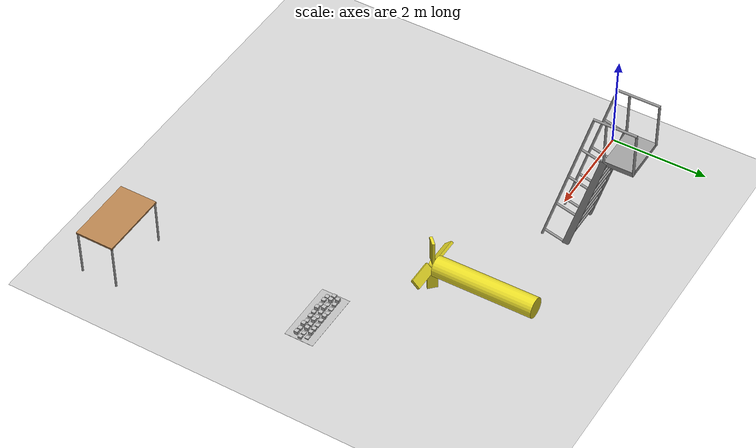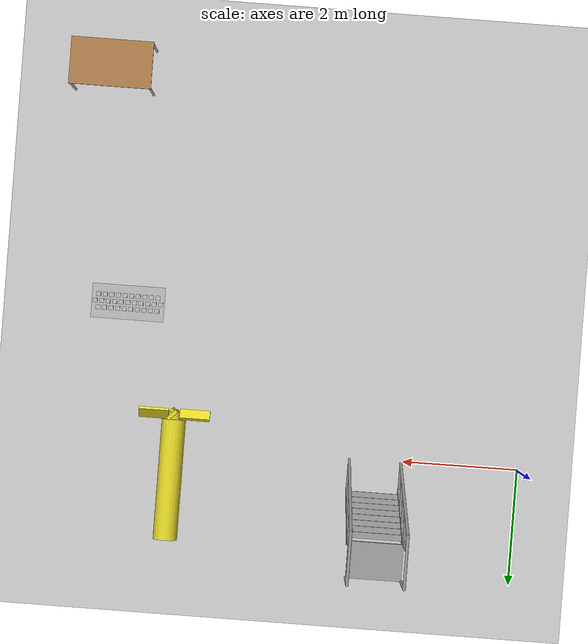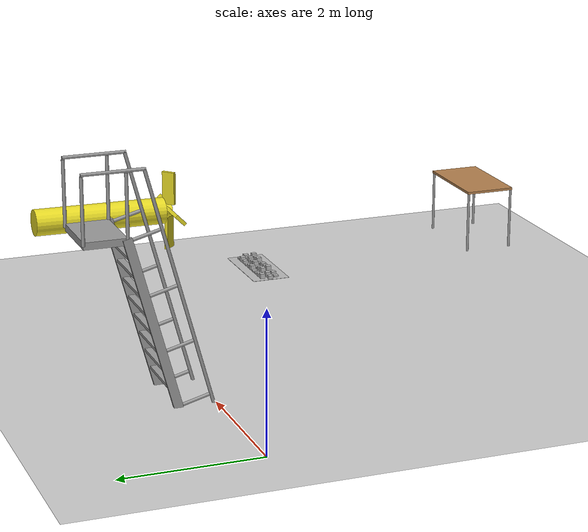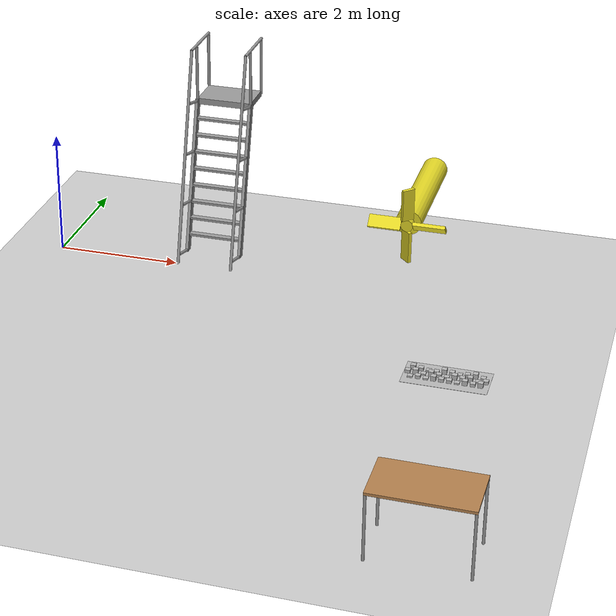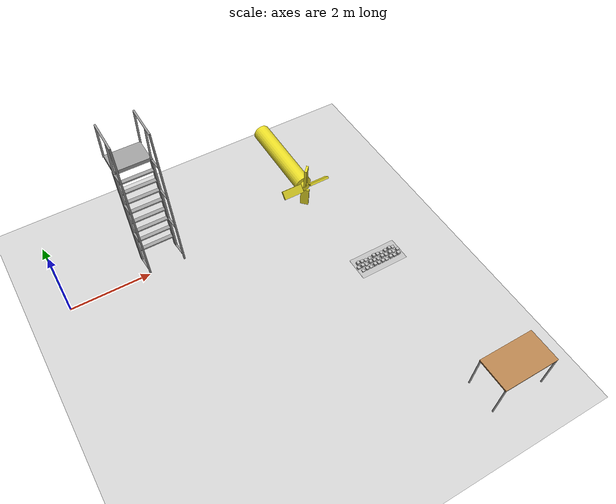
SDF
<sdf version="1.6">
 <world name="default">
  <model name="ground_plane">
   <static>1</static>
   <link name="link">
    <collision name="collision">
     <geometry><plane><normal>0 0 1</normal><size>100 100</size></plane></geometry>
     <surface><friction><ode><mu>100</mu><mu2>50</mu2></ode></friction></surface>
    </collision>
    <visual name="visual">
     <cast_shadows>0</cast_shadows>
     <geometry><plane><normal>0 0 1</normal><size>100 100</size></plane></geometry>
     <material>
      <script><uri>file://media/materials/scripts/gazebo.material</uri><name>Gazebo/Grey</name></script>
     </material>
    </visual>
   </link>
  </model>
  <model name="table">
   <static>0</static>
   <link name="link">
    <collision name="surface">
     <pose>0 0 1 0 -0 0</pose>
     <geometry><box><size>1.5 0.8 0.03</size></box></geometry>
     <surface><friction><ode><mu>0.6</mu><mu2>0.6</mu2></ode></friction></surface>
    </collision>
    <visual name="visual1">
     <pose>0 0 1 0 -0 0</pose>
     <geometry><box><size>1.4 0.8 0.04</size></box></geometry>
     <material>
      <script><uri>file://media/materials/scripts/gazebo.material</uri><name>Gazebo/Wood</name></script>
     </material>
    </visual>
    <collision name="front_left_leg">
     <pose>0.68 0.38 0.5 0 -0 0</pose>
     <geometry><cylinder><radius>0.02</radius><length>1</length></cylinder></geometry>
    </collision>
    <visual name="front_left_leg">
     <pose>0.68 0.38 0.5 0 -0 0</pose>
     <geometry><cylinder><radius>0.02</radius><length>1</length></cylinder></geometry>
     <material>
      <script><uri>file://media/materials/scripts/gazebo.material</uri><name>Gazebo/Grey</name></script>
     </material>
    </visual>
    <collision name="front_right_leg">
     <pose>0.68 -0.38 0.5 0 -0 0</pose>
     <geometry><cylinder><radius>0.02</radius><length>1</length></cylinder></geometry>
    </collision>
    <visual name="front_right_leg">
     <pose>0.68 -0.38 0.5 0 -0 0</pose>
     <geometry><cylinder><radius>0.02</radius><length>1</length></cylinder></geometry>
     <material>
      <script><uri>file://media/materials/scripts/gazebo.material</uri><name>Gazebo/Grey</name></script>
     </material>
    </visual>
    <collision name="back_right_leg">
     <pose>-0.68 -0.38 0.5 0 -0 0</pose>
     <geometry><cylinder><radius>0.02</radius><length>1</length></cylinder></geometry>
    </collision>
    <visual name="back_right_leg">
     <pose>-0.68 -0.38 0.5 0 -0 0</pose>
     <geometry><cylinder><radius>0.02</radius><length>1</length></cylinder></geometry>
     <material>
      <script><uri>file://media/materials/scripts/gazebo.material</uri><name>Gazebo/Grey</name></script>
     </material>
    </visual>
    <collision name="back_left_leg">
     <pose>-0.68 0.38 0.5 0 -0 0</pose>
     <geometry><cylinder><radius>0.02</radius><length>1</length></cylinder></geometry>
    </collision>
    <visual name="back_left_leg">
     <pose>-0.68 0.38 0.5 0 -0 0</pose>
     <geometry><cylinder><radius>0.02</radius><length>1</length></cylinder></geometry>
     <material>
      <script><uri>file://media/materials/scripts/gazebo.material</uri><name>Gazebo/Grey</name></script>
     </material>
    </visual>
    <inertial>
     <inertia><ixx>1</ixx><ixy>0</ixy><ixz>0</ixz><iyy>1</iyy><iyz>0</iyz><izz>1</izz></inertia>
     <mass>1</mass>
    </inertial>
   </link>
   <pose>7.47952 -6.43159 -1e-06 1e-06 -0 0</pose>
  </model>
  <model name="ladder_75deg_2rails">
   <static>1</static>
   <link name="step0">
    <pose>0 0.071453 0.266667 0 -0 0</pose>
    <inertial>
     <mass>9.75482</mass>
     <inertia>
      <ixx>0.00957124</ixx>
      <iyy>0.65963</iyy>
      <izz>0.666842</izz>
      <ixy>0</ixy>
      <ixz>0</ixz>
      <iyz>0</iyz>
     </inertia>
    </inertial>
    <collision name="collision"><geometry><box><size>0.9 0.1016 0.0381</size></box></geometry></collision>
    <visual name="visual">
     <geometry><box><size>0.9 0.1016 0.0381</size></box></geometry>
     <material>
      <script><uri>file://media/materials/scripts/gazebo.material</uri><name>Gazebo/Grey</name></script>
     </material>
    </visual>
   </link>
   <link name="step1">
    <pose>0 0.142906 0.533333 0 -0 0</pose>
    <inertial>
     <mass>9.75482</mass>
     <inertia>
      <ixx>0.00957124</ixx>
      <iyy>0.65963</iyy>
      <izz>0.666842</izz>
      <ixy>0</ixy>
      <ixz>0</ixz>
      <iyz>0</iyz>
     </inertia>
    </inertial>
    <collision name="collision"><geometry><box><size>0.9 0.1016 0.0381</size></box></geometry></collision>
    <visual name="visual">
     <geometry><box><size>0.9 0.1016 0.0381</size></box></geometry>
     <material>
      <script><uri>file://media/materials/scripts/gazebo.material</uri><name>Gazebo/Grey</name></script>
     </material>
    </visual>
   </link>
   <link name="step2">
    <pose>0 0.214359 0.8 0 -0 0</pose>
    <inertial>
     <mass>9.75482</mass>
     <inertia>
      <ixx>0.00957124</ixx>
      <iyy>0.65963</iyy>
      <izz>0.666842</izz>
      <ixy>0</ixy>
      <ixz>0</ixz>
      <iyz>0</iyz>
     </inertia>
    </inertial>
    <collision name="collision"><geometry><box><size>0.9 0.1016 0.0381</size></box></geometry></collision>
    <visual name="visual">
     <geometry><box><size>0.9 0.1016 0.0381</size></box></geometry>
     <material>
      <script><uri>file://media/materials/scripts/gazebo.material</uri><name>Gazebo/Grey</name></script>
     </material>
    </visual>
   </link>
   <link name="step3">
    <pose>0 0.285812 1.06667 0 -0 0</pose>
    <inertial>
     <mass>9.75482</mass>
     <inertia>
      <ixx>0.00957124</ixx>
      <iyy>0.65963</iyy>
      <izz>0.666842</izz>
      <ixy>0</ixy>
      <ixz>0</ixz>
      <iyz>0</iyz>
     </inertia>
    </inertial>
    <collision name="collision"><geometry><box><size>0.9 0.1016 0.0381</size></box></geometry></collision>
    <visual name="visual">
     <geometry><box><size>0.9 0.1016 0.0381</size></box></geometry>
     <material>
      <script><uri>file://media/materials/scripts/gazebo.material</uri><name>Gazebo/Grey</name></script>
     </material>
    </visual>
   </link>
   <link name="step4">
    <pose>0 0.357266 1.33333 0 -0 0</pose>
    <inertial>
     <mass>9.75482</mass>
     <inertia>
      <ixx>0.00957124</ixx>
      <iyy>0.65963</iyy>
      <izz>0.666842</izz>
      <ixy>0</ixy>
      <ixz>0</ixz>
      <iyz>0</iyz>
     </inertia>
    </inertial>
    <collision name="collision"><geometry><box><size>0.9 0.1016 0.0381</size></box></geometry></collision>
    <visual name="visual">
     <geometry><box><size>0.9 0.1016 0.0381</size></box></geometry>
     <material>
      <script><uri>file://media/materials/scripts/gazebo.material</uri><name>Gazebo/Grey</name></script>
     </material>
    </visual>
   </link>
   <link name="step5">
    <pose>0 0.428719 1.6 0 -0 0</pose>
    <inertial>
     <mass>9.75482</mass>
     <inertia>
      <ixx>0.00957124</ixx>
      <iyy>0.65963</iyy>
      <izz>0.666842</izz>
      <ixy>0</ixy>
      <ixz>0</ixz>
      <iyz>0</iyz>
     </inertia>
    </inertial>
    <collision name="collision"><geometry><box><size>0.9 0.1016 0.0381</size></box></geometry></collision>
    <visual name="visual">
     <geometry><box><size>0.9 0.1016 0.0381</size></box></geometry>
     <material>
      <script><uri>file://media/materials/scripts/gazebo.material</uri><name>Gazebo/Grey</name></script>
     </material>
    </visual>
   </link>
   <link name="step6">
    <pose>0 0.500172 1.86667 0 -0 0</pose>
    <inertial>
     <mass>9.75482</mass>
     <inertia>
      <ixx>0.00957124</ixx>
      <iyy>0.65963</iyy>
      <izz>0.666842</izz>
      <ixy>0</ixy>
      <ixz>0</ixz>
      <iyz>0</iyz>
     </inertia>
    </inertial>
    <collision name="collision"><geometry><box><size>0.9 0.1016 0.0381</size></box></geometry></collision>
    <visual name="visual">
     <geometry><box><size>0.9 0.1016 0.0381</size></box></geometry>
     <material>
      <script><uri>file://media/materials/scripts/gazebo.material</uri><name>Gazebo/Grey</name></script>
     </material>
    </visual>
   </link>
   <link name="step7">
    <pose>0 0.571625 2.13333 0 -0 0</pose>
    <inertial>
     <mass>9.75482</mass>
     <inertia>
      <ixx>0.00957124</ixx>
      <iyy>0.65963</iyy>
      <izz>0.666842</izz>
      <ixy>0</ixy>
      <ixz>0</ixz>
      <iyz>0</iyz>
     </inertia>
    </inertial>
    <collision name="collision"><geometry><box><size>0.9 0.1016 0.0381</size></box></geometry></collision>
    <visual name="visual">
     <geometry><box><size>0.9 0.1016 0.0381</size></box></geometry>
     <material>
      <script><uri>file://media/materials/scripts/gazebo.material</uri><name>Gazebo/Grey</name></script>
     </material>
    </visual>
   </link>
   <link name="landing">
    <pose>0 0.943078 2.4 0 -0 0</pose>
    <inertial>
     <mass>57.6072</mass>
     <inertia><ixx>1.73518</ixx><iyy>3.89545</iyy><izz>5.6167</izz><ixy>0</ixy><ixz>0</ixz><iyz>0</iyz></inertia>
    </inertial>
    <collision name="collision"><geometry><box><size>0.9 0.6 0.1016</size></box></geometry></collision>
    <visual name="visual">
     <geometry><box><size>0.9 0.6 0.1016</size></box></geometry>
     <material>
      <script><uri>file://media/materials/scripts/gazebo.material</uri><name>Gazebo/Grey</name></script>
     </material>
    </visual>
   </link>
   <link name="left_side_wall">
    <pose>-0.45 0.321539 1.2 1.309 -0 0</pose>
    <collision name="collision"><geometry><box><size>0.0508 2.56466 0.13</size></box></geometry></collision>
    <visual name="visual">
     <geometry><box><size>0.0508 2.56466 0.13</size></box></geometry>
     <material>
      <script><uri>file://media/materials/scripts/gazebo.material</uri><name>Gazebo/Grey</name></script>
     </material>
    </visual>
   </link>
   <link name="right_side_wall">
    <pose>0.45 0.321539 1.2 1.309 -0 0</pose>
    <collision name="collision"><geometry><box><size>0.0508 2.56466 0.13</size></box></geometry></collision>
    <visual name="visual">
     <geometry><box><size>0.0508 2.56466 0.13</size></box></geometry>
     <material>
      <script><uri>file://media/materials/scripts/gazebo.material</uri><name>Gazebo/Grey</name></script>
     </material>
    </visual>
   </link>
   <link name="left_railing_long">
    <pose>-0.45 -0.053461 1.66651 -0.261799 0 0</pose>
    <collision name="collision">
     <geometry><cylinder><radius>0.02413</radius><length>3.51529</length></cylinder></geometry>
    </collision>
    <visual name="visual">
     <geometry><cylinder><radius>0.02413</radius><length>3.51529</length></cylinder></geometry>
     <material>
      <script><uri>file://media/materials/scripts/gazebo.material</uri><name>Gazebo/Grey</name></script>
     </material>
    </visual>
   </link>
   <link name="left_railing_upright0">
    <pose>-0.45 -0.210089 0.056293 1.309 -0 0</pose>
    <collision name="collision">
     <geometry><cylinder><radius>0.02413</radius><length>0.482963</length></cylinder></geometry>
    </collision>
    <visual name="visual">
     <geometry><cylinder><radius>0.02413</radius><length>0.482963</length></cylinder></geometry>
     <material>
      <script><uri>file://media/materials/scripts/gazebo.material</uri><name>Gazebo/Grey</name></script>
     </material>
    </visual>
   </link>
   <link name="left_railing_upright1">
    <pose>-0.45 0.00427 0.856293 1.309 -0 0</pose>
    <collision name="collision">
     <geometry><cylinder><radius>0.02413</radius><length>0.482963</length></cylinder></geometry>
    </collision>
    <visual name="visual">
     <geometry><cylinder><radius>0.02413</radius><length>0.482963</length></cylinder></geometry>
     <material>
      <script><uri>file://media/materials/scripts/gazebo.material</uri><name>Gazebo/Grey</name></script>
     </material>
    </visual>
   </link>
   <link name="left_railing_upright2">
    <pose>-0.45 0.21863 1.65629 1.309 -0 0</pose>
    <collision name="collision">
     <geometry><cylinder><radius>0.02413</radius><length>0.482963</length></cylinder></geometry>
    </collision>
    <visual name="visual">
     <geometry><cylinder><radius>0.02413</radius><length>0.482963</length></cylinder></geometry>
     <material>
      <script><uri>file://media/materials/scripts/gazebo.material</uri><name>Gazebo/Grey</name></script>
     </material>
    </visual>
   </link>
   <link name="left_railing_upright3">
    <pose>-0.45 0.432989 2.45629 1.309 -0 0</pose>
    <collision name="collision">
     <geometry><cylinder><radius>0.02413</radius><length>0.482963</length></cylinder></geometry>
    </collision>
    <visual name="visual">
     <geometry><cylinder><radius>0.02413</radius><length>0.482963</length></cylinder></geometry>
     <material>
      <script><uri>file://media/materials/scripts/gazebo.material</uri><name>Gazebo/Grey</name></script>
     </material>
    </visual>
   </link>
   <link name="left_railing_landing_top">
    <pose>-0.45 0.818078 3.35714 1.5708 -0 0</pose>
    <collision name="collision">
     <geometry><cylinder><radius>0.02413</radius><length>0.87413</length></cylinder></geometry>
    </collision>
    <visual name="visual">
     <geometry><cylinder><radius>0.02413</radius><length>0.87413</length></cylinder></geometry>
     <material>
      <script><uri>file://media/materials/scripts/gazebo.material</uri><name>Gazebo/Grey</name></script>
     </material>
    </visual>
   </link>
   <link name="left_railing_landing_upright_0">
    <pose>-0.45 0.643078 2.86651 0 -0 0</pose>
    <collision name="collision">
     <geometry><cylinder><radius>0.02413</radius><length>0.933013</length></cylinder></geometry>
    </collision>
    <visual name="visual">
     <geometry><cylinder><radius>0.02413</radius><length>0.933013</length></cylinder></geometry>
     <material>
      <script><uri>file://media/materials/scripts/gazebo.material</uri><name>Gazebo/Grey</name></script>
     </material>
    </visual>
   </link>
   <link name="left_railing_landing_upright_1">
    <pose>-0.45 1.24308 2.86651 0 -0 0</pose>
    <collision name="collision">
     <geometry><cylinder><radius>0.02413</radius><length>0.933013</length></cylinder></geometry>
    </collision>
    <visual name="visual">
     <geometry><cylinder><radius>0.02413</radius><length>0.933013</length></cylinder></geometry>
     <material>
      <script><uri>file://media/materials/scripts/gazebo.material</uri><name>Gazebo/Grey</name></script>
     </material>
    </visual>
   </link>
   <link name="right_railing_long">
    <pose>0.45 -0.053461 1.66651 -0.261799 0 0</pose>
    <collision name="collision">
     <geometry><cylinder><radius>0.02413</radius><length>3.51529</length></cylinder></geometry>
    </collision>
    <visual name="visual">
     <geometry><cylinder><radius>0.02413</radius><length>3.51529</length></cylinder></geometry>
     <material>
      <script><uri>file://media/materials/scripts/gazebo.material</uri><name>Gazebo/Grey</name></script>
     </material>
    </visual>
   </link>
   <link name="right_railing_upright0">
    <pose>0.45 -0.210089 0.056293 1.309 -0 0</pose>
    <collision name="collision">
     <geometry><cylinder><radius>0.02413</radius><length>0.482963</length></cylinder></geometry>
    </collision>
    <visual name="visual">
     <geometry><cylinder><radius>0.02413</radius><length>0.482963</length></cylinder></geometry>
     <material>
      <script><uri>file://media/materials/scripts/gazebo.material</uri><name>Gazebo/Grey</name></script>
     </material>
    </visual>
   </link>
   <link name="right_railing_upright1">
    <pose>0.45 0.00427 0.856293 1.309 -0 0</pose>
    <collision name="collision">
     <geometry><cylinder><radius>0.02413</radius><length>0.482963</length></cylinder></geometry>
    </collision>
    <visual name="visual">
     <geometry><cylinder><radius>0.02413</radius><length>0.482963</length></cylinder></geometry>
     <material>
      <script><uri>file://media/materials/scripts/gazebo.material</uri><name>Gazebo/Grey</name></script>
     </material>
    </visual>
   </link>
   <link name="right_railing_upright2">
    <pose>0.45 0.21863 1.65629 1.309 -0 0</pose>
    <collision name="collision">
     <geometry><cylinder><radius>0.02413</radius><length>0.482963</length></cylinder></geometry>
    </collision>
    <visual name="visual">
     <geometry><cylinder><radius>0.02413</radius><length>0.482963</length></cylinder></geometry>
     <material>
      <script><uri>file://media/materials/scripts/gazebo.material</uri><name>Gazebo/Grey</name></script>
     </material>
    </visual>
   </link>
   <link name="right_railing_upright3">
    <pose>0.45 0.432989 2.45629 1.309 -0 0</pose>
    <collision name="collision">
     <geometry><cylinder><radius>0.02413</radius><length>0.482963</length></cylinder></geometry>
    </collision>
    <visual name="visual">
     <geometry><cylinder><radius>0.02413</radius><length>0.482963</length></cylinder></geometry>
     <material>
      <script><uri>file://media/materials/scripts/gazebo.material</uri><name>Gazebo/Grey</name></script>
     </material>
    </visual>
   </link>
   <link name="right_railing_landing_top">
    <pose>0.45 0.818078 3.35714 1.5708 -0 0</pose>
    <collision name="collision">
     <geometry><cylinder><radius>0.02413</radius><length>0.87413</length></cylinder></geometry>
    </collision>
    <visual name="visual">
     <geometry><cylinder><radius>0.02413</radius><length>0.87413</length></cylinder></geometry>
     <material>
      <script><uri>file://media/materials/scripts/gazebo.material</uri><name>Gazebo/Grey</name></script>
     </material>
    </visual>
   </link>
   <link name="right_railing_landing_upright_0">
    <pose>0.45 0.643078 2.86651 0 -0 0</pose>
    <collision name="collision">
     <geometry><cylinder><radius>0.02413</radius><length>0.933013</length></cylinder></geometry>
    </collision>
    <visual name="visual">
     <geometry><cylinder><radius>0.02413</radius><length>0.933013</length></cylinder></geometry>
     <material>
      <script><uri>file://media/materials/scripts/gazebo.material</uri><name>Gazebo/Grey</name></script>
     </material>
    </visual>
   </link>
   <link name="right_railing_landing_upright_1">
    <pose>0.45 1.24308 2.86651 0 -0 0</pose>
    <collision name="collision">
     <geometry><cylinder><radius>0.02413</radius><length>0.933013</length></cylinder></geometry>
    </collision>
    <visual name="visual">
     <geometry><cylinder><radius>0.02413</radius><length>0.933013</length></cylinder></geometry>
     <material>
      <script><uri>file://media/materials/scripts/gazebo.material</uri><name>Gazebo/Grey</name></script>
     </material>
    </visual>
   </link>
   <pose>2.47282 0.529956 0 0 -0 0</pose>
  </model>
  <model name="submarine">
   <pose>5.93428 0.476933 1.54822 1.58098 -0 0</pose>
   <link name="body">
    <inertial>
     <mass>251.327</mass>
     <inertia><ixx>86.2891</ixx><ixy>0</ixy><ixz>0</ixz><iyy>86.2891</iyy><iyz>0</iyz><izz>5.02655</izz></inertia>
    </inertial>
    <visual name="body_visual">
     <geometry><cylinder><radius>0.2</radius><length>2</length></cylinder></geometry>
     <material>
      <script><uri>file://media/materials/scripts/gazebo.material</uri><name>Gazebo/Yellow</name></script>
     </material>
    </visual>
    <collision name="body_collision">
     <geometry><cylinder><radius>0.2</radius><length>2</length></cylinder></geometry>
    </collision>
    <visual name="spacer_visual">
     <pose>0 0 1.05855 0 -0 0</pose>
     <geometry><cylinder><radius>0.0933402</radius><length>0.127211</length></cylinder></geometry>
     <material>
      <script><uri>file://media/materials/scripts/gazebo.material</uri><name>Gazebo/Yellow</name></script>
     </material>
    </visual>
   </link>
   <link name="propeller">
    <pose>0 0 1.09 3.14159 -0 0</pose>
    <inertial>
     <mass>21.82</mass>
     <inertia>
      <ixx>0.459994</ixx>
      <ixy>0</ixy>
      <ixz>0</ixz>
      <iyy>0.459994</iyy>
      <iyz>0</iyz>
      <izz>0.909167</izz>
     </inertia>
    </inertial>
    <visual name="blade1_visual">
     <pose>0.34334 0 0 0.785398 -0 0</pose>
     <geometry><box><size>0.5 0.2 0.05455</size></box></geometry>
     <material>
      <script><uri>file://media/materials/scripts/gazebo.material</uri><name>Gazebo/Yellow</name></script>
     </material>
    </visual>
    <collision name="blade1_collision">
     <pose>0.34334 0 0 0.785398 -0 0</pose>
     <geometry><box><size>0.5 0.2 0.05455</size></box></geometry>
    </collision>
    <visual name="blade2_visual">
     <pose>0 0.34334 0 0.785398 0 1.5708</pose>
     <geometry><box><size>0.5 0.2 0.05455</size></box></geometry>
     <material>
      <script><uri>file://media/materials/scripts/gazebo.material</uri><name>Gazebo/Yellow</name></script>
     </material>
    </visual>
    <collision name="blade2_collision">
     <pose>0 0.34334 0 0.785398 0 1.5708</pose>
     <geometry><box><size>0.5 0.2 0.05455</size></box></geometry>
    </collision>
    <visual name="blade3_visual">
     <pose>-0.34334 -0 0 -0.785398 0 0</pose>
     <geometry><box><size>0.5 0.2 0.05455</size></box></geometry>
     <material>
      <script><uri>file://media/materials/scripts/gazebo.material</uri><name>Gazebo/Yellow</name></script>
     </material>
    </visual>
    <collision name="blade3_collision">
     <pose>-0.34334 -0 0 -0.785398 0 0</pose>
     <geometry><box><size>0.5 0.2 0.05455</size></box></geometry>
    </collision>
    <visual name="blade4_visual">
     <pose>-0 -0.34334 0 -0.785398 -0 1.5708</pose>
     <geometry><box><size>0.5 0.2 0.05455</size></box></geometry>
     <material>
      <script><uri>file://media/materials/scripts/gazebo.material</uri><name>Gazebo/Yellow</name></script>
     </material>
    </visual>
    <collision name="blade4_collision">
     <pose>-0 -0.34334 0 -0.785398 -0 1.5708</pose>
     <geometry><box><size>0.5 0.2 0.05455</size></box></geometry>
    </collision>
   </link>
   <joint name="spinning_joint" type="revolute">
    <parent>body</parent>
    <child>propeller</child>
    <axis>
     <xyz>0 0 1</xyz>
     <use_parent_model_frame>1</use_parent_model_frame>
     <limit><lower>-1e+12</lower><upper>1e+12</upper><effort>-1</effort><velocity>-1</velocity></limit>
     <dynamics><spring_reference>0</spring_reference><spring_stiffness>0</spring_stiffness></dynamics>
    </axis>
   </joint>
   <plugin name="submarine_propeller_1" filename="libLiftDragPlugin.so">
    <air_density>1000</air_density>
    <cla>1.2535816618911175</cla>
    <cla_stall>-1.4326647564469914</cla_stall>
    <cda>0</cda>
    <cda_stall>1.4326647564469914</cda_stall>
    <alpha_stall>1.396</alpha_stall>
    <a0>0</a0>
    <area>0.27637</area>
    <upward>0 -0.7071067811865476 -0.7071067811865475</upward>
    <forward>0 -0.7071067811865475 0.7071067811865476</forward>
    <link_name>propeller</link_name>
    <cp>0.35 0 0</cp>
   </plugin>
   <plugin name="submarine_propeller_2" filename="libLiftDragPlugin.so">
    <air_density>1000</air_density>
    <cla>1.2535816618911175</cla>
    <cla_stall>-1.4326647564469914</cla_stall>
    <cda>0</cda>
    <cda_stall>1.4326647564469914</cda_stall>
    <alpha_stall>1.396</alpha_stall>
    <a0>0</a0>
    <area>0.27637</area>
    <upward>-0.7071067811865475 0 -0.7071067811865476</upward>
    <forward>-0.7071067811865476 0 0.7071067811865475</forward>
    <link_name>propeller</link_name>
    <cp>0 -0.35 0</cp>
   </plugin>
   <plugin name="submarine_propeller_3" filename="libLiftDragPlugin.so">
    <air_density>1000</air_density>
    <cla>1.2535816618911175</cla>
    <cla_stall>-1.4326647564469914</cla_stall>
    <cda>0</cda>
    <cda_stall>1.4326647564469914</cda_stall>
    <alpha_stall>1.396</alpha_stall>
    <a0>0</a0>
    <area>0.27637</area>
    <upward>0 0.7071067811865475 -0.7071067811865476</upward>
    <forward>0 -0.7071067811865476 -0.7071067811865475</forward>
    <link_name>propeller</link_name>
    <cp>-0.35 0 0</cp>
   </plugin>
   <plugin name="submarine_propeller_4" filename="libLiftDragPlugin.so">
    <air_density>1000</air_density>
    <cla>1.2535816618911175</cla>
    <cla_stall>-1.4326647564469914</cla_stall>
    <cda>0</cda>
    <cda_stall>1.4326647564469914</cda_stall>
    <alpha_stall>1.396</alpha_stall>
    <a0>0</a0>
    <area>0.27637</area>
    <upward>0.7071067811865476 0 -0.7071067811865475</upward>
    <forward>0.7071067811865475 0 0.7071067811865476</forward>
    <link_name>propeller</link_name>
    <cp>0 0.35 0</cp>
   </plugin>
   <plugin name="buoyancy" filename="libBuoyancyPlugin.so"><fluid_density>1000</fluid_density></plugin>
  </model>
  <model name="frc2016_roughterrain">
   <static>1</static>
   <link name="link">
    <visual name="platform">
     <pose>0 0 0.08269 0 -0 0</pose>
     <geometry><box><size>1.27 0.5969 0.003175</size></box></geometry>
    </visual>
    <collision name="platform">
     <pose>0 0 0.08269 0 -0 0</pose>
     <geometry><box><size>1.27 0.5969 0.003175</size></box></geometry>
    </collision>
    <visual name="row1_block1_sm">
     <pose>0.51435 0.1143 0.09698 0 -0 0</pose>
     <geometry><box><size>0.0762 0.0762 0.0254</size></box></geometry>
    </visual>
    <collision name="row1_block1_sm">
     <pose>0.51435 0.1143 0.09698 0 -0 0</pose>
     <geometry><box><size>0.0762 0.0762 0.0254</size></box></geometry>
    </collision>
    <visual name="row1_block2_lg">
     <pose>0.40005 0.1143 0.12238 0 -0 0</pose>
     <geometry><box><size>0.0762 0.0762 0.0762</size></box></geometry>
    </visual>
    <collision name="row1_block2_lg">
     <pose>0.40005 0.1143 0.12238 0 -0 0</pose>
     <geometry><box><size>0.0762 0.0762 0.0762</size></box></geometry>
    </collision>
    <visual name="row1_block3_md">
     <pose>0.28575 0.1143 0.10968 0 -0 0</pose>
     <geometry><box><size>0.0762 0.0762 0.0508</size></box></geometry>
    </visual>
    <collision name="row1_block3_md">
     <pose>0.28575 0.1143 0.10968 0 -0 0</pose>
     <geometry><box><size>0.0762 0.0762 0.0508</size></box></geometry>
    </collision>
    <visual name="row1_block4_sm">
     <pose>0.17145 0.1143 0.09698 0 -0 0</pose>
     <geometry><box><size>0.0762 0.0762 0.0254</size></box></geometry>
    </visual>
    <collision name="row1_block4_sm">
     <pose>0.17145 0.1143 0.09698 0 -0 0</pose>
     <geometry><box><size>0.0762 0.0762 0.0254</size></box></geometry>
    </collision>
    <visual name="row1_block5_md">
     <pose>0.05715 0.1143 0.10968 0 -0 0</pose>
     <geometry><box><size>0.0762 0.0762 0.0508</size></box></geometry>
    </visual>
    <collision name="row1_block5_md">
     <pose>0.05715 0.1143 0.10968 0 -0 0</pose>
     <geometry><box><size>0.0762 0.0762 0.0508</size></box></geometry>
    </collision>
    <visual name="row1_block6_lg">
     <pose>-0.05715 0.1143 0.12238 0 -0 0</pose>
     <geometry><box><size>0.0762 0.0762 0.0762</size></box></geometry>
    </visual>
    <collision name="row1_block6_lg">
     <pose>-0.05715 0.1143 0.12238 0 -0 0</pose>
     <geometry><box><size>0.0762 0.0762 0.0762</size></box></geometry>
    </collision>
    <visual name="row1_block7_sm">
     <pose>-0.17145 0.1143 0.09698 0 -0 0</pose>
     <geometry><box><size>0.0762 0.0762 0.0254</size></box></geometry>
    </visual>
    <collision name="row1_block7_sm">
     <pose>-0.17145 0.1143 0.09698 0 -0 0</pose>
     <geometry><box><size>0.0762 0.0762 0.0254</size></box></geometry>
    </collision>
    <visual name="row1_block8_sm">
     <pose>-0.28575 0.1143 0.09698 0 -0 0</pose>
     <geometry><box><size>0.0762 0.0762 0.0254</size></box></geometry>
    </visual>
    <collision name="row1_block8_sm">
     <pose>-0.28575 0.1143 0.09698 0 -0 0</pose>
     <geometry><box><size>0.0762 0.0762 0.0254</size></box></geometry>
    </collision>
    <visual name="row1_block9_md">
     <pose>-0.40005 0.1143 0.10968 0 -0 0</pose>
     <geometry><box><size>0.0762 0.0762 0.0508</size></box></geometry>
    </visual>
    <collision name="row1_block9_md">
     <pose>-0.40005 0.1143 0.10968 0 -0 0</pose>
     <geometry><box><size>0.0762 0.0762 0.0508</size></box></geometry>
    </collision>
    <visual name="row1_block10_lg">
     <pose>-0.51435 0.1143 0.12238 0 -0 0</pose>
     <geometry><box><size>0.0762 0.0762 0.0762</size></box></geometry>
    </visual>
    <collision name="row1_block10_lg">
     <pose>-0.51435 0.1143 0.12238 0 -0 0</pose>
     <geometry><box><size>0.0762 0.0762 0.0762</size></box></geometry>
    </collision>
    <visual name="row2_block1_md">
     <pose>0.5715 0 0.10968 0 -0 0</pose>
     <geometry><box><size>0.0762 0.0762 0.0508</size></box></geometry>
    </visual>
    <collision name="row2_block1_md">
     <pose>0.5715 0 0.10968 0 -0 0</pose>
     <geometry><box><size>0.0762 0.0762 0.0508</size></box></geometry>
    </collision>
    <visual name="row2_block2_sm">
     <pose>0.4572 0 0.09698 0 -0 0</pose>
     <geometry><box><size>0.0762 0.0762 0.0254</size></box></geometry>
    </visual>
    <collision name="row2_block2_sm">
     <pose>0.4572 0 0.09698 0 -0 0</pose>
     <geometry><box><size>0.0762 0.0762 0.0254</size></box></geometry>
    </collision>
    <visual name="row2_block3_lg">
     <pose>0.3429 0 0.12238 0 -0 0</pose>
     <geometry><box><size>0.0762 0.0762 0.0762</size></box></geometry>
    </visual>
    <collision name="row2_block3_lg">
     <pose>0.3429 0 0.12238 0 -0 0</pose>
     <geometry><box><size>0.0762 0.0762 0.0762</size></box></geometry>
    </collision>
    <visual name="row2_block4_md">
     <pose>0.2286 0 0.10968 0 -0 0</pose>
     <geometry><box><size>0.0762 0.0762 0.0508</size></box></geometry>
    </visual>
    <collision name="row2_block4_md">
     <pose>0.2286 0 0.10968 0 -0 0</pose>
     <geometry><box><size>0.0762 0.0762 0.0508</size></box></geometry>
    </collision>
    <visual name="row2_block5_lg">
     <pose>0.1143 0 0.12238 0 -0 0</pose>
     <geometry><box><size>0.0762 0.0762 0.0762</size></box></geometry>
    </visual>
    <collision name="row2_block5_lg">
     <pose>0.1143 0 0.12238 0 -0 0</pose>
     <geometry><box><size>0.0762 0.0762 0.0762</size></box></geometry>
    </collision>
    <visual name="row2_block6_sm">
     <pose>0 0 0.09698 0 -0 0</pose>
     <geometry><box><size>0.0762 0.0762 0.0254</size></box></geometry>
    </visual>
    <collision name="row2_block6_sm">
     <pose>0 0 0.09698 0 -0 0</pose>
     <geometry><box><size>0.0762 0.0762 0.0254</size></box></geometry>
    </collision>
    <visual name="row2_block7_md">
     <pose>-0.1143 0 0.10968 0 -0 0</pose>
     <geometry><box><size>0.0762 0.0762 0.0508</size></box></geometry>
    </visual>
    <collision name="row2_block7_md">
     <pose>-0.1143 0 0.10968 0 -0 0</pose>
     <geometry><box><size>0.0762 0.0762 0.0508</size></box></geometry>
    </collision>
    <visual name="row2_block8_lg">
     <pose>-0.2286 0 0.12238 0 -0 0</pose>
     <geometry><box><size>0.0762 0.0762 0.0762</size></box></geometry>
    </visual>
    <collision name="row2_block8_lg">
     <pose>-0.2286 0 0.12238 0 -0 0</pose>
     <geometry><box><size>0.0762 0.0762 0.0762</size></box></geometry>
    </collision>
    <visual name="row2_block9_sm">
     <pose>-0.3429 0 0.09698 0 -0 0</pose>
     <geometry><box><size>0.0762 0.0762 0.0254</size></box></geometry>
    </visual>
    <collision name="row2_block9_sm">
     <pose>-0.3429 0 0.09698 0 -0 0</pose>
     <geometry><box><size>0.0762 0.0762 0.0254</size></box></geometry>
    </collision>
    <visual name="row2_block10_lg">
     <pose>-0.4572 0 0.12238 0 -0 0</pose>
     <geometry><box><size>0.0762 0.0762 0.0762</size></box></geometry>
    </visual>
    <collision name="row2_block10_lg">
     <pose>-0.4572 0 0.12238 0 -0 0</pose>
     <geometry><box><size>0.0762 0.0762 0.0762</size></box></geometry>
    </collision>
    <visual name="row2_block11_md">
     <pose>-0.5715 0 0.10968 0 -0 0</pose>
     <geometry><box><size>0.0762 0.0762 0.0508</size></box></geometry>
    </visual>
    <collision name="row2_block11_md">
     <pose>-0.5715 0 0.10968 0 -0 0</pose>
     <geometry><box><size>0.0762 0.0762 0.0508</size></box></geometry>
    </collision>
    <visual name="row3_block1_lg">
     <pose>0.51435 -0.1143 0.12238 0 -0 0</pose>
     <geometry><box><size>0.0762 0.0762 0.0762</size></box></geometry>
    </visual>
    <collision name="row3_block1_lg">
     <pose>0.51435 -0.1143 0.12238 0 -0 0</pose>
     <geometry><box><size>0.0762 0.0762 0.0762</size></box></geometry>
    </collision>
    <visual name="row3_block2_md">
     <pose>0.40005 -0.1143 0.10968 0 -0 0</pose>
     <geometry><box><size>0.0762 0.0762 0.0508</size></box></geometry>
    </visual>
    <collision name="row3_block2_md">
     <pose>0.40005 -0.1143 0.10968 0 -0 0</pose>
     <geometry><box><size>0.0762 0.0762 0.0508</size></box></geometry>
    </collision>
    <visual name="row3_block3_lg">
     <pose>0.28575 -0.1143 0.12238 0 -0 0</pose>
     <geometry><box><size>0.0762 0.0762 0.0762</size></box></geometry>
    </visual>
    <collision name="row3_block3_lg">
     <pose>0.28575 -0.1143 0.12238 0 -0 0</pose>
     <geometry><box><size>0.0762 0.0762 0.0762</size></box></geometry>
    </collision>
    <visual name="row3_block4_sm">
     <pose>0.17145 -0.1143 0.09698 0 -0 0</pose>
     <geometry><box><size>0.0762 0.0762 0.0254</size></box></geometry>
    </visual>
    <collision name="row3_block4_sm">
     <pose>0.17145 -0.1143 0.09698 0 -0 0</pose>
     <geometry><box><size>0.0762 0.0762 0.0254</size></box></geometry>
    </collision>
    <visual name="row3_block5_md">
     <pose>0.05715 -0.1143 0.10968 0 -0 0</pose>
     <geometry><box><size>0.0762 0.0762 0.0508</size></box></geometry>
    </visual>
    <collision name="row3_block5_md">
     <pose>0.05715 -0.1143 0.10968 0 -0 0</pose>
     <geometry><box><size>0.0762 0.0762 0.0508</size></box></geometry>
    </collision>
    <visual name="row3_block6_md">
     <pose>-0.05715 -0.1143 0.10968 0 -0 0</pose>
     <geometry><box><size>0.0762 0.0762 0.0508</size></box></geometry>
    </visual>
    <collision name="row3_block6_md">
     <pose>-0.05715 -0.1143 0.10968 0 -0 0</pose>
     <geometry><box><size>0.0762 0.0762 0.0508</size></box></geometry>
    </collision>
    <visual name="row3_block7_lg">
     <pose>-0.17145 -0.1143 0.12238 0 -0 0</pose>
     <geometry><box><size>0.0762 0.0762 0.0762</size></box></geometry>
    </visual>
    <collision name="row3_block7_lg">
     <pose>-0.17145 -0.1143 0.12238 0 -0 0</pose>
     <geometry><box><size>0.0762 0.0762 0.0762</size></box></geometry>
    </collision>
    <visual name="row3_block8_sm">
     <pose>-0.28575 -0.1143 0.09698 0 -0 0</pose>
     <geometry><box><size>0.0762 0.0762 0.0254</size></box></geometry>
    </visual>
    <collision name="row3_block8_sm">
     <pose>-0.28575 -0.1143 0.09698 0 -0 0</pose>
     <geometry><box><size>0.0762 0.0762 0.0254</size></box></geometry>
    </collision>
    <visual name="row3_block9_md">
     <pose>-0.40005 -0.1143 0.10968 0 -0 0</pose>
     <geometry><box><size>0.0762 0.0762 0.0508</size></box></geometry>
    </visual>
    <collision name="row3_block9_md">
     <pose>-0.40005 -0.1143 0.10968 0 -0 0</pose>
     <geometry><box><size>0.0762 0.0762 0.0508</size></box></geometry>
    </collision>
    <visual name="row3_block10_sm">
     <pose>-0.51435 -0.1143 0.09698 0 -0 0</pose>
     <geometry><box><size>0.0762 0.0762 0.0254</size></box></geometry>
    </visual>
    <collision name="row3_block10_sm">
     <pose>-0.51435 -0.1143 0.09698 0 -0 0</pose>
     <geometry><box><size>0.0762 0.0762 0.0254</size></box></geometry>
    </collision>
   </link>
   <pose>6.97037 -2.4127 0 0 -0 0</pose>
  </model>
 </world>
</sdf>
